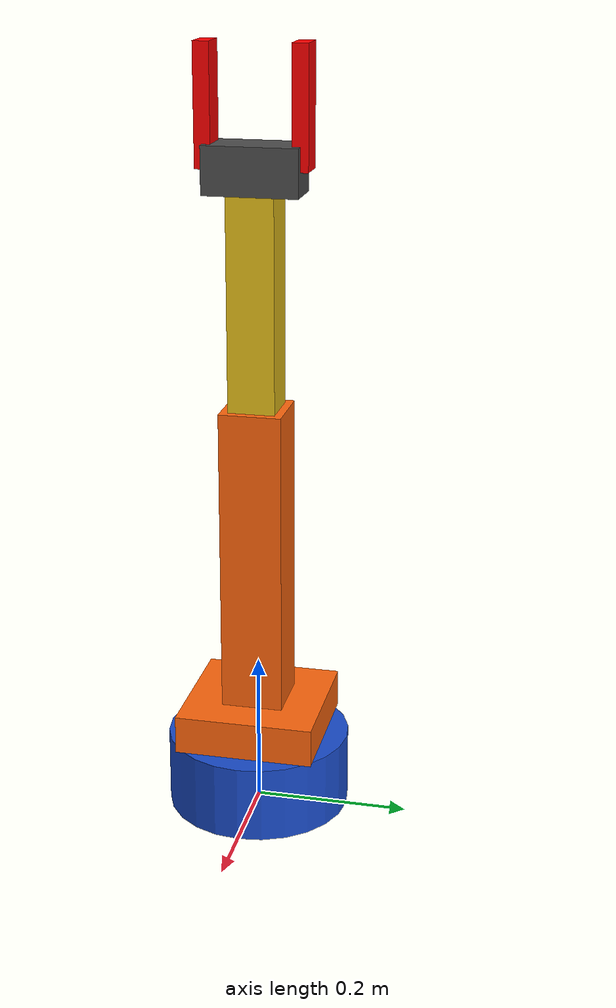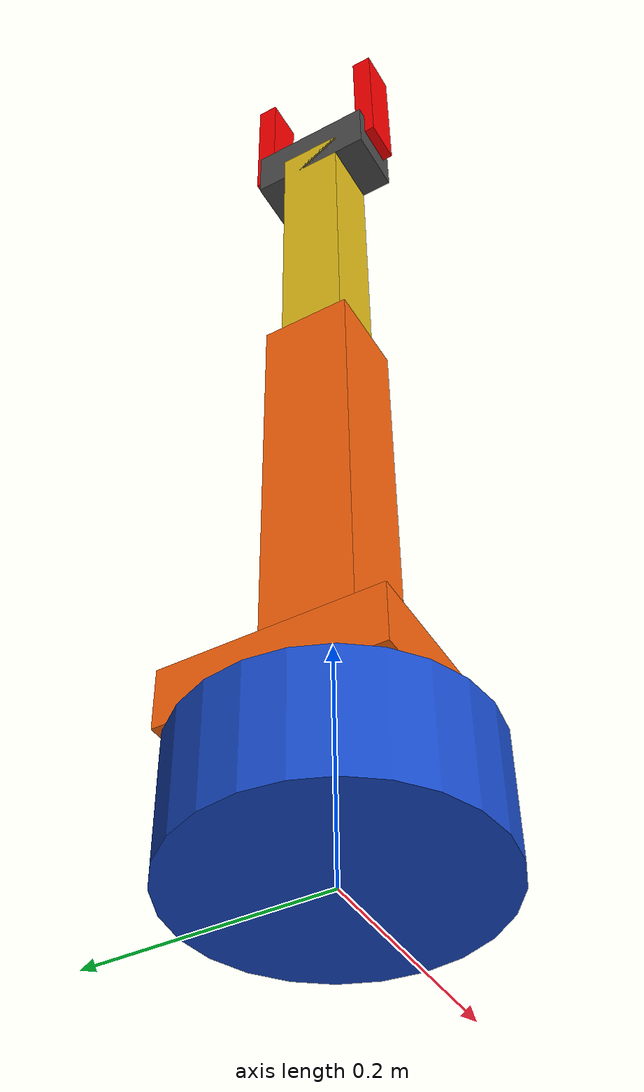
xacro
<?xml version="1.0"?>
<robot name="manipulator" xmlns:xacro="http://www.ros.org/wiki/xacro">
<xacro:arg name="use_control" default="false"/>
  <!-- ===== Размеры ===== -->
  <xacro:property name="base_r"     value="0.12"/>
  <xacro:property name="base_h"     value="0.1"/>
  <xacro:property name="shoulder_l" value="0.4"/>
  <xacro:property name="elbow_l"    value="0.3"/>
  <xacro:property name="finger_l"   value="0.15"/>

  <!-- ===== Макрос: звено-параллелепипед (стоит от начала координат вверх по z) ===== -->
  <xacro:macro name="box_link" params="name mass x y z rgba material">
    <link name="${name}">
      <visual>
        <origin xyz="0 0 ${z/2}"/>
        <geometry><box size="${x} ${y} ${z}"/></geometry>
        <material name="${material}"><color rgba="${rgba}"/></material>
      </visual>
      <collision>
        <origin xyz="0 0 ${z/2}"/>
        <geometry><box size="${x} ${y} ${z}"/></geometry>
      </collision>
      <inertial>
        <origin xyz="0 0 ${z/2}"/>
        <mass value="${mass}"/>
        <inertia ixx="${mass/12*(y*y+z*z)}" ixy="0" ixz="0"
                 iyy="${mass/12*(x*x+z*z)}" iyz="0"
                 izz="${mass/12*(x*x+y*y)}"/>
      </inertial>
    </link>
  </xacro:macro>

  <!-- ===== Макрос: палец ===== -->
  <xacro:macro name="finger" params="side reflect lower upper">
    <xacro:box_link name="${side}_grip" mass="0.02" x="0.04" y="0.02"
                    z="${finger_l}" rgba="1 0 0 1" material="red_${side}"/>
    <joint name="${side}_grip_joint" type="revolute">
      <parent link="tool_link"/>
      <child link="${side}_grip"/>
      <origin xyz="0 ${reflect*0.06} 0"/>
      <axis xyz="1 0 0"/>
      <limit lower="${lower}" upper="${upper}" effort="20" velocity="1.0"/>
    </joint>
  </xacro:macro>

  <!-- ===== Основание ===== -->
  <link name="world"/>

  <link name="base_link">
    <visual>
      <origin xyz="0 0 ${base_h/2}"/>
      <geometry><cylinder radius="${base_r}" length="${base_h}"/></geometry>
      <material name="blue"><color rgba="0.1 0.3 0.8 1"/></material>
    </visual>
    <collision>
      <origin xyz="0 0 ${base_h/2}"/>
      <geometry><cylinder radius="${base_r}" length="${base_h}"/></geometry>
    </collision>
    <inertial>
      <origin xyz="0 0 ${base_h/2}"/>
      <mass value="2.0"/>
      <inertia ixx="0.01" ixy="0" ixz="0" iyy="0.01" iyz="0" izz="0.01"/>
    </inertial>
  </link>

  <joint name="base_joint" type="fixed">
    <parent link="world"/>
    <child link="base_link"/>
  </joint>

<!-- ===== Стол вращения ===== -->
  <xacro:box_link name="rotate_base_link" mass="1.0" x="0.18" y="0.18"
                  z="0.05" rgba="1 0.4 0.05 1" material="orange"/>
  <joint name="rotate_base_joint" type="revolute">
    <parent link="base_link"/>
    <child link="rotate_base_link"/>
    <origin xyz="0 0 ${base_h}"/>
    <axis xyz="0 0 1"/>
    <limit lower="${-pi}" upper="${pi}" effort="20" velocity="1.0"/>
  </joint>

  <!-- ===== Плечо ===== -->
  <xacro:box_link name="shoulder_link" mass="0.8" x="0.08" y="0.08"
                  z="${shoulder_l}" rgba="1 0.4 0.05 1" material="orange"/>
  <joint name="shoulder_joint" type="revolute">
    <parent link="rotate_base_link"/>
    <child link="shoulder_link"/>
    <origin xyz="0 0 0.05"/>
    <axis xyz="0 1 0"/>
    <limit lower="${-pi/2}" upper="${pi/2}" effort="20" velocity="1.0"/>
  </joint>

  <!-- ===== Предплечье ===== -->
  <xacro:box_link name="elbow_link" mass="0.5" x="0.06" y="0.06"
                  z="${elbow_l}" rgba="0.9 0.75 0.1 1" material="yellow"/>
  <joint name="elbow_joint" type="revolute">
    <parent link="shoulder_link"/>
    <child link="elbow_link"/>
    <origin xyz="0 0 ${shoulder_l}"/>
    <axis xyz="0 1 0"/>
    <limit lower="-2.0" upper="2.0" effort="15" velocity="1.0"/>
  </joint>

  <!-- ===== Крепление захвата ===== -->
  <link name="tool_link">
    <visual>
      <geometry><box size="0.06 0.12 0.06"/></geometry>
      <material name="grey"><color rgba="0.3 0.3 0.3 1"/></material>
    </visual>
    <collision>
      <geometry><box size="0.06 0.12 0.06"/></geometry>
    </collision>
    <inertial>
      <mass value="0.2"/>
      <inertia ixx="0.001" ixy="0" ixz="0" iyy="0.001" iyz="0" izz="0.001"/>
    </inertial>
  </link>
  <joint name="wrist_joint" type="revolute">
    <parent link="elbow_link"/>
    <child link="tool_link"/>
    <origin xyz="0 0 ${elbow_l}"/>
    <axis xyz="0 1 0"/>
    <limit lower="${-pi/2}" upper="${pi/2}" effort="5" velocity="1.0"/>
  </joint>

  <!-- ===== Два пальца одним макросом ===== -->
  <xacro:finger side="left"  reflect="1"  lower="0"    upper="0.3"/>
  <xacro:finger side="right" reflect="-1" lower="-0.3" upper="0"/>

  <xacro:macro name="pos_joint" params="name">
  <joint name="${name}">
    <command_interface name="position"/>
    <state_interface name="position"/>
    <state_interface name="velocity"/>
  </joint>
</xacro:macro>

<xacro:if value="$(arg use_control)">
<ros2_control name="GazeboSystem" type="system">
  <hardware>
    <plugin>gazebo_ros2_control/GazeboSystem</plugin>
  </hardware>
  <xacro:pos_joint name="rotate_base_joint"/>
  <xacro:pos_joint name="shoulder_joint"/>
  <xacro:pos_joint name="elbow_joint"/>
  <xacro:pos_joint name="wrist_joint"/>
  <xacro:pos_joint name="left_grip_joint"/>
  <xacro:pos_joint name="right_grip_joint"/>
</ros2_control>
<gazebo>
      <plugin name="gazebo_ros2_control" filename="libgazebo_ros2_control.so">
        <parameters>$(find manipulator)/config/controllers.yaml</parameters>
      </plugin>
    </gazebo>
  </xacro:if>
  <xacro:unless value="$(arg use_control)">
    <gazebo>
      <static>true</static>
    </gazebo>
  </xacro:unless>
</robot>
